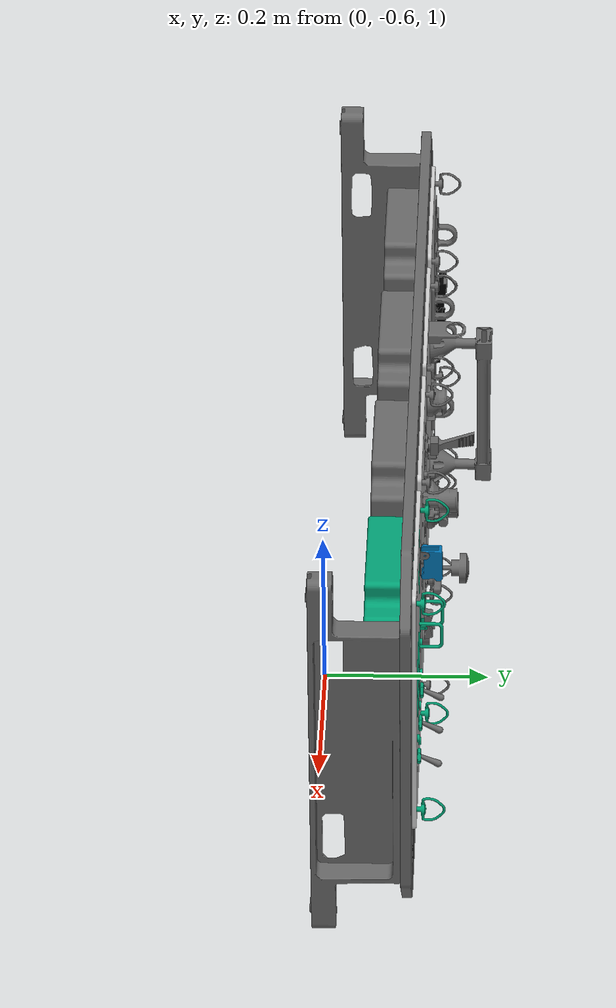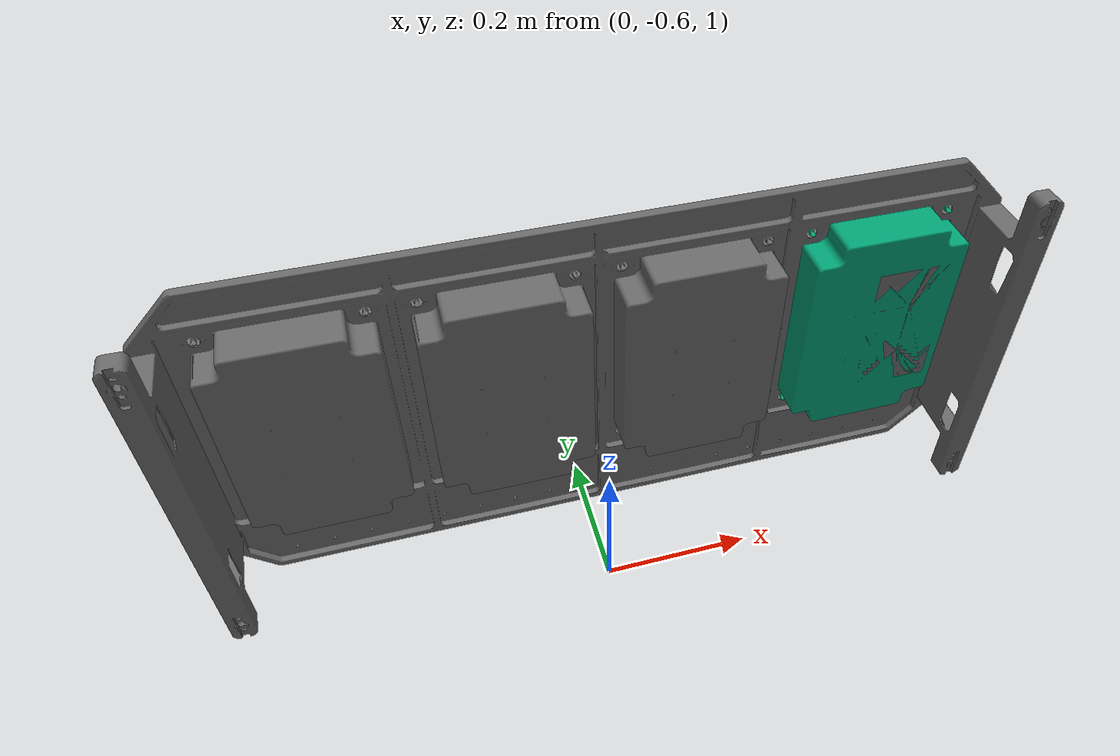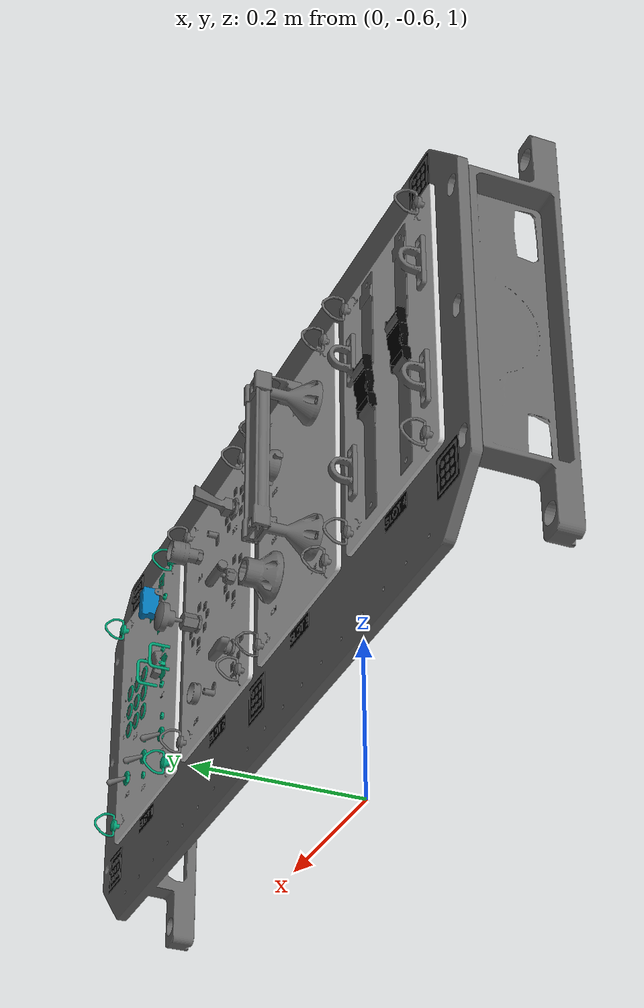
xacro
<?xml version="1.0"?>
<robot xmlns:controller="http://playerstage.sourceforge.net/gazebo/xmlschema/#controller">
  <link name="world"/>
  <link name="dummy">
    <inertial>
      <mass value="1"/>
      <inertia ixx="1" ixy="0.0" ixz="0.0" iyy="1" iyz="0.0" izz="1"/>
    </inertial>
  </link>
  <link name="taskboard_lower">
    <visual>
      <geometry>
        <mesh filename="package://r2_gazebo/Media/models/taskboard/tskbd_lower_assembly_robonaut.dae"/>
      </geometry>
      <origin xyz="0.0 0.0 0.0" rpy="0 0 0"/>
    </visual>
    <collision>
      <geometry>
        <mesh filename="package://r2_gazebo/Media/models/taskboard/tskbd_lower_assembly_robonaut.dae" scale="0 0 0"/>
      </geometry>
      <origin xyz="0.0 0.0 0.0" rpy="0 0 0"/>
    </collision>
    <inertial>
      <mass value="5"/>
      <inertia ixx="1" ixy="0.0" ixz="0.0" iyy="1" iyz="0.0" izz="1"/>
    </inertial>
  </link>

  <link name="taskboard_lower_labels">
    <visual>
      <geometry>
        <mesh filename="package://r2_gazebo/Media/models/taskboard/tskbd_lower_assembly_labels.dae"/>
      </geometry>
      <origin xyz="0.0 0.0 0.0" rpy="0 0 0"/>
    </visual>
    <collision>
      <geometry>
        <mesh filename="package://r2_gazebo/Media/models/taskboard/tskbd_lower_assembly_labels.dae" scale="0 0 0"/>
      </geometry>
      <origin xyz="0.0 0.0 0.0" rpy="0 0 0"/>
    </collision>
    <inertial>
      <mass value="5"/>
      <inertia ixx="1" ixy="0.0" ixz="0.0" iyy="1" iyz="0.0" izz="1"/>
    </inertial>
  </link>

  <link name="taskboard_slot3">
    <visual>
      <geometry>
        <mesh filename="package://r2_gazebo/Media/models/taskboard/tskbd_panel_assembly_eva_slot3.dae"/>
      </geometry>
      <origin xyz="0.0 0.0 0.0" rpy="0 0 0"/>
    </visual>
    <collision>
      <geometry>
        <mesh filename="package://r2_gazebo/Media/models/taskboard/tskbd_panel_assembly_eva_slot3.dae" scale="1 1 1"/>
      </geometry>
      <origin xyz="0.0 0.0 0.0" rpy="0 0 0"/>
    </collision>
    <inertial>
      <mass value="5"/>
      <inertia ixx="1" ixy="0.0" ixz="0.0" iyy="1" iyz="0.0" izz="1"/>
    </inertial>
  </link>

  <link name="taskboard_slot3_panel">
    <visual>
      <geometry>
        <mesh filename="package://r2_gazebo/Media/models/taskboard/tskbd_panel_assembly_slot1_panel.dae"/>
      </geometry>
      <origin xyz="0.0 0.0 0.0" rpy="0 0 0"/>
    </visual>
    <collision>
      <geometry>
        <mesh filename="package://r2_gazebo/Media/models/taskboard/tskbd_panel_assembly_slot1_panel.dae" scale="1 1 1"/>
      </geometry>
      <origin xyz="0.0 0.0 0.0" rpy="0 0 0"/>
    </collision>
    <inertial>
      <mass value="5"/>
      <inertia ixx="1" ixy="0.0" ixz="0.0" iyy="1" iyz="0.0" izz="1"/>
    </inertial>
  </link>

  <link name="taskboard_slot3_labels">
    <visual>
      <geometry>
        <mesh filename="package://r2_gazebo/Media/models/taskboard/tskbd_panel_assembly_eva_slot3_labels.dae"/>
      </geometry>
      <origin xyz="0.0 0.0 0.0" rpy="0 0 0"/>
    </visual>
    <collision>
      <geometry>
        <mesh filename="package://r2_gazebo/Media/models/taskboard/tskbd_panel_assembly_eva_slot3_labels.dae" scale="1 1 1"/>
      </geometry>
      <origin xyz="0.0 0.0 0.0" rpy="0 0 0"/>
    </collision>
    <inertial>
      <mass value="5"/>
      <inertia ixx="1" ixy="0.0" ixz="0.0" iyy="1" iyz="0.0" izz="1"/>
    </inertial>
  </link>

  <link name="taskboard_slot4">
    <visual>
      <geometry>
        <mesh filename="package://r2_gazebo/Media/models/taskboard/tskbd_panel_assembly_slot4.dae"/>
      </geometry>
      <origin xyz="0.0 0.0 0.0" rpy="0 0 0"/>
    </visual>
    <collision>
      <geometry>
        <mesh filename="package://r2_gazebo/Media/models/taskboard/tskbd_panel_assembly_slot4.dae" scale="1 1 1"/>
      </geometry>
      <origin xyz="0.0 0.0 0.0" rpy="0 0 0"/>
    </collision>
    <inertial>
      <mass value="5"/>
      <inertia ixx="1" ixy="0.0" ixz="0.0" iyy="1" iyz="0.0" izz="1"/>
    </inertial>
  </link>

  <link name="taskboard_slot4_panel">
    <visual>
      <geometry>
        <mesh filename="package://r2_gazebo/Media/models/taskboard/tskbd_panel_assembly_slot4_panel.dae"/>
      </geometry>
      <origin xyz="0.0 0.0 0.0" rpy="0 0 0"/>
    </visual>
    <collision>
      <geometry>
        <mesh filename="package://r2_gazebo/Media/models/taskboard/tskbd_panel_assembly_slot4_panel.dae" scale="1 1 1"/>
      </geometry>
      <origin xyz="0.0 0.0 0.0" rpy="0 0 0"/>
    </collision>
    <inertial>
      <mass value="5"/>
      <inertia ixx="1" ixy="0.0" ixz="0.0" iyy="1" iyz="0.0" izz="1"/>
    </inertial>
  </link>

  <link name="taskboard_slot4_labels">
    <visual>
      <geometry>
        <mesh filename="package://r2_gazebo/Media/models/taskboard/tskbd_panel_assembly_slot4_labels.dae"/>
      </geometry>
      <origin xyz="0.0 0.0 0.0" rpy="0 0 0"/>
    </visual>
    <collision>
      <geometry>
        <mesh filename="package://r2_gazebo/Media/models/taskboard/tskbd_panel_assembly_slot4_labels.dae" scale="1 1 1"/>
      </geometry>
      <origin xyz="0.0 0.0 0.0" rpy="0 0 0"/>
    </collision>
    <inertial>
      <mass value="5"/>
      <inertia ixx="1" ixy="0.0" ixz="0.0" iyy="1" iyz="0.0" izz="1"/>
    </inertial>
  </link>

  <link name="taskboard_slot1">
    <visual>
      <geometry>
        <mesh filename="package://r2_gazebo/Media/models/taskboard/tskbd_panel_assembly_slot1.dae"/>
      </geometry>
      <origin xyz="0.0 0.0 0.0" rpy="0 0 0"/>
    </visual>
    <collision>
      <geometry>
        <mesh filename="package://r2_gazebo/Media/models/taskboard/tskbd_panel_assembly_slot1.dae" scale="1 1 1"/>
      </geometry>
      <origin xyz="0.0 0.0 0.0" rpy="0 0 0"/>
    </collision>
    <inertial>
      <mass value="5"/>
      <inertia ixx="1" ixy="0.0" ixz="0.0" iyy="1" iyz="0.0" izz="1"/>
    </inertial>
  </link>

  <link name="taskboard_slot1_panel">
    <visual>
      <geometry>
        <mesh filename="package://r2_gazebo/Media/models/taskboard/tskbd_panel_assembly_slot1_panel.dae"/>
      </geometry>
      <origin xyz="0.0 0.0 0.0" rpy="0 0 0"/>
    </visual>
    <collision>
      <geometry>
        <mesh filename="package://r2_gazebo/Media/models/taskboard/tskbd_panel_assembly_slot1_panel.dae" scale="1 1 1"/>
      </geometry>
      <origin xyz="0.0 0.0 0.0" rpy="0 0 0"/>
    </collision>
    <inertial>
      <mass value="5"/>
      <inertia ixx="1" ixy="0.0" ixz="0.0" iyy="1" iyz="0.0" izz="1"/>
    </inertial>
  </link>

  <link name="taskboard_slot1_labels">
    <visual>
      <geometry>
        <mesh filename="package://r2_gazebo/Media/models/taskboard/tskbd_panel_assembly_slot1_labels.dae"/>
      </geometry>
      <origin xyz="0.0 0.0 0.0" rpy="0 0 0"/>
    </visual>
    <collision>
      <geometry>
        <mesh filename="package://r2_gazebo/Media/models/taskboard/tskbd_panel_assembly_slot1_labels.dae" scale="1 1 1"/>
      </geometry>
      <origin xyz="0.0 0.0 0.0" rpy="0 0 0"/>
    </collision>
    <inertial>
      <mass value="5"/>
      <inertia ixx="1" ixy="0.0" ixz="0.0" iyy="1" iyz="0.0" izz="1"/>
    </inertial>
  </link>

  <link name="taskboard_slot1_switch1">
    <visual>
      <geometry>
        <mesh filename="package://r2_gazebo/Media/models/taskboard/tskbd_panel_assembly_slot1_switch1.dae"/>
      </geometry>
      <origin xyz="0.0 0.0 0.0" rpy="0 0 0"/>
    </visual>
    <collision>
      <geometry>
        <mesh filename="package://r2_gazebo/Media/models/taskboard/tskbd_panel_assembly_slot1_switch1.dae" scale="1 1 1"/>
      </geometry>
      <origin xyz="0.0 0.0 0.0" rpy="0 0 0"/>
    </collision>
    <inertial>
      <mass value="0.5"/>
      <inertia ixx="1" ixy="0.0" ixz="0.0" iyy="1" iyz="0.0" izz="1"/>
    </inertial>
  </link>

  <link name="taskboard_slot1_switch2_pullout">
    <inertial>
      <mass value=".01"/>
      <inertia ixx="1" ixy="0.0" ixz="0.0" iyy="1" iyz="0.0" izz="1"/>
    </inertial>
  </link>

  <link name="taskboard_slot1_switch2">
    <visual>
      <geometry>
        <mesh filename="package://r2_gazebo/Media/models/taskboard/tskbd_panel_assembly_slot1_switch2.dae"/>
      </geometry>
      <origin xyz="0.0 0.0 0.0" rpy="0 0 0"/>
    </visual>
    <collision>
      <geometry>
        <mesh filename="package://r2_gazebo/Media/models/taskboard/tskbd_panel_assembly_slot1_switch2.dae" scale="1 1 1"/>
      </geometry>
      <origin xyz="0.0 0.0 0.0" rpy="0 0 0"/>
    </collision>
    <inertial>
      <mass value="0.5"/>
      <inertia ixx="1" ixy="0.0" ixz="0.0" iyy="1" iyz="0.0" izz="1"/>
    </inertial>
  </link>

  <link name="taskboard_slot1_switch3_pullout">
    <inertial>
      <mass value=".01"/>
      <inertia ixx="1" ixy="0.0" ixz="0.0" iyy="1" iyz="0.0" izz="1"/>
    </inertial>
  </link>

  <link name="taskboard_slot1_switch3">
    <visual>
      <geometry>
        <mesh filename="package://r2_gazebo/Media/models/taskboard/tskbd_panel_assembly_slot1_switch3.dae"/>
      </geometry>
      <origin xyz="0.0 0.0 0.0" rpy="0 0 0"/>
    </visual>
    <collision>
      <geometry>
        <mesh filename="package://r2_gazebo/Media/models/taskboard/tskbd_panel_assembly_slot1_switch3.dae" scale="1 1 1"/>
      </geometry>
      <origin xyz="0.0 0.0 0.0" rpy="0 0 0"/>
    </collision>
    <inertial>
      <mass value="0.5"/>
      <inertia ixx="1" ixy="0.0" ixz="0.0" iyy="1" iyz="0.0" izz="1"/>
    </inertial>
  </link>

  <link name="taskboard_slot1_switch4_pullout">
    <inertial>
      <mass value=".01"/>
      <inertia ixx="1" ixy="0.0" ixz="0.0" iyy="1" iyz="0.0" izz="1"/>
    </inertial>
  </link>

  <link name="taskboard_slot1_switch4">
    <visual>
      <geometry>
        <mesh filename="package://r2_gazebo/Media/models/taskboard/tskbd_panel_assembly_slot1_switch4.dae"/>
      </geometry>
      <origin xyz="0.0 0.0 0.0" rpy="0 0 0"/>
    </visual>
    <collision>
      <geometry>
        <mesh filename="package://r2_gazebo/Media/models/taskboard/tskbd_panel_assembly_slot1_switch4.dae" scale="1 1 1"/>
      </geometry>
      <origin xyz="0.0 0.0 0.0" rpy="0 0 0"/>
    </collision>
    <inertial>
      <mass value="0.5"/>
      <inertia ixx="1" ixy="0.0" ixz="0.0" iyy="1" iyz="0.0" izz="1"/>
    </inertial>
  </link>

  <link name="taskboard_slot1_switch1_cover">
    <visual>
      <geometry>
        <mesh filename="package://r2_gazebo/Media/models/taskboard/tskbd_panel_assembly_slot1_switch1_cover.dae"/>
      </geometry>
      <origin xyz="0.0 0.0 0.0" rpy="0 0 0"/>
    </visual>
    <collision>
      <geometry>
        <mesh filename="package://r2_gazebo/Media/models/taskboard/tskbd_panel_assembly_slot1_switch1_cover.dae" scale="1 1 1"/>
      </geometry>
      <origin xyz="0.0 0.0 0.0" rpy="0 0 0"/>
    </collision>
    <inertial>
      <mass value="0.5"/>
      <inertia ixx="1" ixy="0.0" ixz="0.0" iyy="1" iyz="0.0" izz="1"/>
    </inertial>
  </link>

  <link name="taskboard_slot1_guard">
    <visual>
      <geometry>
        <mesh filename="package://r2_gazebo/Media/models/taskboard/tskbd_panel_assembly_slot1_guard.dae"/>
      </geometry>
      <origin xyz="0.0 0.0 0.0" rpy="0 0 0"/>
    </visual>
    <collision>
      <geometry>
        <mesh filename="package://r2_gazebo/Media/models/taskboard/tskbd_panel_assembly_slot1_guard.dae" scale="1 1 1"/>
      </geometry>
      <origin xyz="0.0 0.0 0.0" rpy="0 0 0"/>
    </collision>
    <inertial>
      <mass value="5"/>
      <inertia ixx="1" ixy="0.0" ixz="0.0" iyy="1" iyz="0.0" izz="1"/>
    </inertial>
  </link>

  <link name="taskboard_slot1_A1">
    <visual>
      <geometry>
        <mesh filename="package://r2_gazebo/Media/models/taskboard/tskbd_panel_assembly_slot1_a1.dae"/>
      </geometry>
      <origin xyz="0.0 0.0 0.0" rpy="0 0 0"/>
    </visual>
    <collision>
      <geometry>
        <mesh filename="package://r2_gazebo/Media/models/taskboard/tskbd_panel_assembly_slot1_a1.dae" scale="1 1 1"/>
      </geometry>
      <origin xyz="0.0 0.0 0.0" rpy="0 0 0"/>
    </collision>
    <inertial>
      <mass value="0.5"/>
      <inertia ixx="1" ixy="0.0" ixz="0.0" iyy="1" iyz="0.0" izz="1"/>
    </inertial>
  </link>

  <link name="taskboard_slot1_A2">
    <visual>
      <geometry>
        <mesh filename="package://r2_gazebo/Media/models/taskboard/tskbd_panel_assembly_slot1_a2.dae"/>
      </geometry>
      <origin xyz="0.0 0.0 0.0" rpy="0 0 0"/>
    </visual>
    <collision>
      <geometry>
        <mesh filename="package://r2_gazebo/Media/models/taskboard/tskbd_panel_assembly_slot1_a2.dae" scale="1 1 1"/>
      </geometry>
      <origin xyz="0.0 0.0 0.0" rpy="0 0 0"/>
    </collision>
    <inertial>
      <mass value="0.5"/>
      <inertia ixx="1" ixy="0.0" ixz="0.0" iyy="1" iyz="0.0" izz="1"/>
    </inertial>
  </link>

  <link name="taskboard_slot1_A3">
    <visual>
      <geometry>
        <mesh filename="package://r2_gazebo/Media/models/taskboard/tskbd_panel_assembly_slot1_a3.dae"/>
      </geometry>
      <origin xyz="0.0 0.0 0.0" rpy="0 0 0"/>
    </visual>
    <collision>
      <geometry>
        <mesh filename="package://r2_gazebo/Media/models/taskboard/tskbd_panel_assembly_slot1_a3.dae" scale="1 1 1"/>
      </geometry>
      <origin xyz="0.0 0.0 0.0" rpy="0 0 0"/>
    </collision>
    <inertial>
      <mass value="0.5"/>
      <inertia ixx="1" ixy="0.0" ixz="0.0" iyy="1" iyz="0.0" izz="1"/>
    </inertial>
  </link>

  <link name="taskboard_slot1_B1">
    <visual>
      <geometry>
        <mesh filename="package://r2_gazebo/Media/models/taskboard/tskbd_panel_assembly_slot1_b1.dae"/>
      </geometry>
      <origin xyz="0.0 0.0 0.0" rpy="0 0 0"/>
    </visual>
    <collision>
      <geometry>
        <mesh filename="package://r2_gazebo/Media/models/taskboard/tskbd_panel_assembly_slot1_b1.dae" scale="1 1 1"/>
      </geometry>
      <origin xyz="0.0 0.0 0.0" rpy="0 0 0"/>
    </collision>
    <inertial>
      <mass value="0.5"/>
      <inertia ixx="1" ixy="0.0" ixz="0.0" iyy="1" iyz="0.0" izz="1"/>
    </inertial>
  </link>

  <link name="taskboard_slot1_B2">
    <visual>
      <geometry>
        <mesh filename="package://r2_gazebo/Media/models/taskboard/tskbd_panel_assembly_slot1_b2.dae"/>
      </geometry>
      <origin xyz="0.0 0.0 0.0" rpy="0 0 0"/>
    </visual>
    <collision>
      <geometry>
        <mesh filename="package://r2_gazebo/Media/models/taskboard/tskbd_panel_assembly_slot1_b2.dae" scale="1 1 1"/>
      </geometry>
      <origin xyz="0.0 0.0 0.0" rpy="0 0 0"/>
    </collision>
    <inertial>
      <mass value="0.5"/>
      <inertia ixx="1" ixy="0.0" ixz="0.0" iyy="1" iyz="0.0" izz="1"/>
    </inertial>
  </link>

  <link name="taskboard_slot1_B3">
    <visual>
      <geometry>
        <mesh filename="package://r2_gazebo/Media/models/taskboard/tskbd_panel_assembly_slot1_b3.dae"/>
      </geometry>
      <origin xyz="0.0 0.0 0.0" rpy="0 0 0"/>
    </visual>
    <collision>
      <geometry>
        <mesh filename="package://r2_gazebo/Media/models/taskboard/tskbd_panel_assembly_slot1_b3.dae" scale="1 1 1"/>
      </geometry>
      <origin xyz="0.0 0.0 0.0" rpy="0 0 0"/>
    </collision>
    <inertial>
      <mass value="0.5"/>
      <inertia ixx="1" ixy="0.0" ixz="0.0" iyy="1" iyz="0.0" izz="1"/>
    </inertial>
  </link>

  <link name="taskboard_slot1_C1">
    <visual>
      <geometry>
        <mesh filename="package://r2_gazebo/Media/models/taskboard/tskbd_panel_assembly_slot1_c1.dae"/>
      </geometry>
      <origin xyz="0.0 0.0 0.0" rpy="0 0 0"/>
    </visual>
    <collision>
      <geometry>
        <mesh filename="package://r2_gazebo/Media/models/taskboard/tskbd_panel_assembly_slot1_c1.dae" scale="1 1 1"/>
      </geometry>
      <origin xyz="0.0 0.0 0.0" rpy="0 0 0"/>
    </collision>
    <inertial>
      <mass value="0.5"/>
      <inertia ixx="1" ixy="0.0" ixz="0.0" iyy="1" iyz="0.0" izz="1"/>
    </inertial>
  </link>

  <link name="taskboard_slot1_C2">
    <visual>
      <geometry>
        <mesh filename="package://r2_gazebo/Media/models/taskboard/tskbd_panel_assembly_slot1_c2.dae"/>
      </geometry>
      <origin xyz="0.0 0.0 0.0" rpy="0 0 0"/>
    </visual>
    <collision>
      <geometry>
        <mesh filename="package://r2_gazebo/Media/models/taskboard/tskbd_panel_assembly_slot1_c2.dae" scale="1 1 1"/>
      </geometry>
      <origin xyz="0.0 0.0 0.0" rpy="0 0 0"/>
    </collision>
    <inertial>
      <mass value="0.5"/>
      <inertia ixx="1" ixy="0.0" ixz="0.0" iyy="1" iyz="0.0" izz="1"/>
    </inertial>
  </link>

  <link name="taskboard_slot1_C3">
    <visual>
      <geometry>
        <mesh filename="package://r2_gazebo/Media/models/taskboard/tskbd_panel_assembly_slot1_c3.dae"/>
      </geometry>
      <origin xyz="0.0 0.0 0.0" rpy="0 0 0"/>
    </visual>
    <collision>
      <geometry>
        <mesh filename="package://r2_gazebo/Media/models/taskboard/tskbd_panel_assembly_slot1_c3.dae" scale="1 1 1"/>
      </geometry>
      <origin xyz="0.0 0.0 0.0" rpy="0 0 0"/>
    </collision>
    <inertial>
      <mass value="0.5"/>
      <inertia ixx="1" ixy="0.0" ixz="0.0" iyy="1" iyz="0.0" izz="1"/>
    </inertial>
  </link>

  <link name="taskboard_slot1_blackplate">
    <visual>
      <geometry>
        <mesh filename="package://r2_gazebo/Media/models/taskboard/tskbd_panel_assembly_slot1_blackplate.dae"/>
      </geometry>
      <origin xyz="0.0 0.0 0.0" rpy="0 0 0"/>
    </visual>
    <collision>
      <geometry>
        <mesh filename="package://r2_gazebo/Media/models/taskboard/tskbd_panel_assembly_slot1_blackplate.dae" scale="1 1 1"/>
      </geometry>
      <origin xyz="0.0 0.0 0.0" rpy="0 0 0"/>
    </collision>
    <inertial>
      <mass value="5"/>
      <inertia ixx="1" ixy="0.0" ixz="0.0" iyy="1" iyz="0.0" izz="1"/>
    </inertial>
  </link>

  <link name="taskboard_slot1_switch">
    <visual>
      <geometry>
        <mesh filename="package://r2_gazebo/Media/models/taskboard/tskbd_panel_assembly_slot1_switch.dae"/>
      </geometry>
      <origin xyz="0.0 0.0 0.0" rpy="0 0 0"/>
    </visual>
    <collision>
      <geometry>
        <mesh filename="package://r2_gazebo/Media/models/taskboard/tskbd_panel_assembly_slot1_switch.dae" scale="1 1 1"/>
      </geometry>
      <origin xyz="0.0 0.0 0.0" rpy="0 0 0"/>
    </collision>
    <inertial>
      <mass value="0.5"/>
      <inertia ixx="1" ixy="0.0" ixz="0.0" iyy="1" iyz="0.0" izz="1"/>
    </inertial>
  </link>

  <link name="taskboard_slot2">
    <visual>
      <geometry>
        <mesh filename="package://r2_gazebo/Media/models/taskboard/tskbd_panel_assembly_slot2.dae"/>
      </geometry>
      <origin xyz="0.0 0.0 0.0" rpy="0 0 0"/>
    </visual>
    <collision>
      <geometry>
        <mesh filename="package://r2_gazebo/Media/models/taskboard/tskbd_panel_assembly_slot2.dae" scale="1 1 1"/>
      </geometry>
      <origin xyz="0.0 0.0 0.0" rpy="0 0 0"/>
    </collision>
    <inertial>
      <mass value="5"/>
      <inertia ixx="1" ixy="0.0" ixz="0.0" iyy="1" iyz="0.0" izz="1"/>
    </inertial>
  </link>

  <link name="taskboard_slot2_panel">
    <visual>
      <geometry>
        <mesh filename="package://r2_gazebo/Media/models/taskboard/tskbd_panel_assembly_slot1_panel.dae"/>
      </geometry>
      <origin xyz="0.0 0.0 0.0" rpy="0 0 0"/>
    </visual>
    <collision>
      <geometry>
        <mesh filename="package://r2_gazebo/Media/models/taskboard/tskbd_panel_assembly_slot1_panel.dae" scale="1 1 1"/>
      </geometry>
      <origin xyz="0.0 0.0 0.0" rpy="0 0 0"/>
    </collision>
    <inertial>
      <mass value="5"/>
      <inertia ixx="1" ixy="0.0" ixz="0.0" iyy="1" iyz="0.0" izz="1"/>
    </inertial>
  </link>

  <link name="taskboard_slot2_labels1">
    <visual>
      <geometry>
        <mesh filename="package://r2_gazebo/Media/models/taskboard/tskbd_panel_assembly_slot2_labels1.dae"/>
      </geometry>
      <origin xyz="0.0 0.0 0.0" rpy="0 0 0"/>
    </visual>
    <collision>
      <geometry>
        <mesh filename="package://r2_gazebo/Media/models/taskboard/tskbd_panel_assembly_slot2_labels1.dae" scale="1 1 1"/>
      </geometry>
      <origin xyz="0.0 0.0 0.0" rpy="0 0 0"/>
    </collision>
    <inertial>
      <mass value="5"/>
      <inertia ixx="1" ixy="0.0" ixz="0.0" iyy="1" iyz="0.0" izz="1"/>
    </inertial>
  </link>

  <link name="taskboard_slot2_labels2">
    <visual>
      <geometry>
        <mesh filename="package://r2_gazebo/Media/models/taskboard/tskbd_panel_assembly_slot2_labels2.dae"/>
      </geometry>
      <origin xyz="0.0 0.0 0.0" rpy="0 0 0"/>
    </visual>
    <collision>
      <geometry>
        <mesh filename="package://r2_gazebo/Media/models/taskboard/tskbd_panel_assembly_slot2_labels2.dae" scale="1 1 1"/>
      </geometry>
      <origin xyz="0.0 0.0 0.0" rpy="0 0 0"/>
    </collision>
    <inertial>
      <mass value="5"/>
      <inertia ixx="1" ixy="0.0" ixz="0.0" iyy="1" iyz="0.0" izz="1"/>
    </inertial>
  </link>

  <link name="taskboard_slot2_B06">
    <visual>
      <geometry>
        <mesh filename="package://r2_gazebo/Media/models/taskboard/tskbd_panel_assembly_slot2_b06.dae"/>
      </geometry>
      <origin xyz="0.0 0.0 0.0" rpy="0 0 0"/>
    </visual>
    <collision>
      <geometry>
        <mesh filename="package://r2_gazebo/Media/models/taskboard/tskbd_panel_assembly_slot2_b06.dae" scale="1 1 1"/>
      </geometry>
      <origin xyz="0.0 0.0 0.0" rpy="0 0 0"/>
    </collision>
    <inertial>
      <mass value="5"/>
      <inertia ixx="1" ixy="0.0" ixz="0.0" iyy="1" iyz="0.0" izz="1"/>
    </inertial>
  </link>

  <link name="taskboard_slot2_B06_Base">
    <visual>
      <geometry>
        <mesh filename="package://r2_gazebo/Media/models/taskboard/tskbd_panel_assembly_slot2_b06_base.dae"/>
      </geometry>
      <origin xyz="0.0 0.0 0.0" rpy="0 0 0"/>
    </visual>
    <collision>
      <geometry>
        <mesh filename="package://r2_gazebo/Media/models/taskboard/tskbd_panel_assembly_slot2_b06_base.dae" scale="1 1 1"/>
      </geometry>
      <origin xyz="0.0 0.0 0.0" rpy="0 0 0"/>
    </collision>
    <inertial>
      <mass value="5"/>
      <inertia ixx="1" ixy="0.0" ixz="0.0" iyy="1" iyz="0.0" izz="1"/>
    </inertial>
  </link>

  <link name="taskboard_slot2_B04">
    <visual>
      <geometry>
        <mesh filename="package://r2_gazebo/Media/models/taskboard/tskbd_panel_assembly_slot2_b04.dae"/>
      </geometry>
      <origin xyz="0.0 0.0 0.0" rpy="0 0 0"/>
    </visual>
    <collision>
      <geometry>
        <mesh filename="package://r2_gazebo/Media/models/taskboard/tskbd_panel_assembly_slot2_b04.dae" scale="1 1 1"/>
      </geometry>
      <origin xyz="0.0 0.0 0.0" rpy="0 0 0"/>
    </collision>
    <inertial>
      <mass value="5"/>
      <inertia ixx="1" ixy="0.0" ixz="0.0" iyy="1" iyz="0.0" izz="1"/>
    </inertial>
  </link>

  <link name="taskboard_slot2_B04_Base">
    <visual>
      <geometry>
        <mesh filename="package://r2_gazebo/Media/models/taskboard/tskbd_panel_assembly_slot2_b04_base.dae"/>
      </geometry>
      <origin xyz="0.0 0.0 0.0" rpy="0 0 0"/>
    </visual>
    <collision>
      <geometry>
        <mesh filename="package://r2_gazebo/Media/models/taskboard/tskbd_panel_assembly_slot2_b04_base.dae" scale="1 1 1"/>
      </geometry>
      <origin xyz="0.0 0.0 0.0" rpy="0 0 0"/>
    </collision>
    <inertial>
      <mass value="5"/>
      <inertia ixx="1" ixy="0.0" ixz="0.0" iyy="1" iyz="0.0" izz="1"/>
    </inertial>
  </link>

  <link name="taskboard_slot2_B04_Cap">
    <visual>
      <geometry>
        <mesh filename="package://r2_gazebo/Media/models/taskboard/tskbd_panel_assembly_slot2_b04_cap.dae"/>
      </geometry>
      <origin xyz="0.0 0.0 0.0" rpy="0 0 0"/>
    </visual>
    <collision>
      <geometry>
        <mesh filename="package://r2_gazebo/Media/models/taskboard/tskbd_panel_assembly_slot2_b04_cap.dae" scale="1 1 1"/>
      </geometry>
      <origin xyz="0.0 0.0 0.0" rpy="0 0 0"/>
    </collision>
    <inertial>
      <mass value="5"/>
      <inertia ixx="1" ixy="0.0" ixz="0.0" iyy="1" iyz="0.0" izz="1"/>
    </inertial>
  </link>

  <link name="taskboard_slot2_B02">
    <visual>
      <geometry>
        <mesh filename="package://r2_gazebo/Media/models/taskboard/tskbd_panel_assembly_slot2_b02.dae"/>
      </geometry>
      <origin xyz="0.0 0.0 0.0" rpy="0 0 0"/>
    </visual>
    <collision>
      <geometry>
        <mesh filename="package://r2_gazebo/Media/models/taskboard/tskbd_panel_assembly_slot2_b02.dae" scale="1 1 1"/>
      </geometry>
      <origin xyz="0.0 0.0 0.0" rpy="0 0 0"/>
    </collision>
    <inertial>
      <mass value="5"/>
      <inertia ixx="1" ixy="0.0" ixz="0.0" iyy="1" iyz="0.0" izz="1"/>
    </inertial>
  </link>

  <link name="taskboard_slot2_B02_Revolute">
    <inertial>
      <mass value="1"/>
      <inertia ixx="1" ixy="0.0" ixz="0.0" iyy="1" iyz="0.0" izz="1"/>
    </inertial>
  </link>

  <link name="taskboard_slot2_B02_Base">
    <visual>
      <geometry>
        <mesh filename="package://r2_gazebo/Media/models/taskboard/tskbd_panel_assembly_slot2_b02_base.dae"/>
      </geometry>
      <origin xyz="0.0 0.0 0.0" rpy="0 0 0"/>
    </visual>
    <collision>
      <geometry>
        <mesh filename="package://r2_gazebo/Media/models/taskboard/tskbd_panel_assembly_slot2_b02_base.dae" scale="0 0 0"/>
      </geometry>
      <origin xyz="0.0 0.0 0.0" rpy="0 0 0"/>
    </collision>
    <inertial>
      <mass value="5"/>
      <inertia ixx="1" ixy="0.0" ixz="0.0" iyy="1" iyz="0.0" izz="1"/>
    </inertial>
  </link>

  <link name="taskboard_slot2_B01_Base">
    <visual>
      <geometry>
        <mesh filename="package://r2_gazebo/Media/models/taskboard/tskbd_panel_assembly_slot2_b01_base.dae"/>
      </geometry>
      <origin xyz="0.0 0.0 0.0" rpy="0 0 0"/>
    </visual>
    <collision>
      <geometry>
        <mesh filename="package://r2_gazebo/Media/models/taskboard/tskbd_panel_assembly_slot2_b01_base.dae" scale="1 1 1"/>
      </geometry>
      <origin xyz="0.0 0.0 0.0" rpy="0 0 0"/>
    </collision>
    <inertial>
      <mass value="5"/>
      <inertia ixx="1" ixy="0.0" ixz="0.0" iyy="1" iyz="0.0" izz="1"/>
    </inertial>
  </link>

  <link name="taskboard_slot2_B05_Base">
    <visual>
      <geometry>
        <mesh filename="package://r2_gazebo/Media/models/taskboard/tskbd_panel_assembly_slot2_b05_base.dae"/>
      </geometry>
      <origin xyz="0.0 0.0 0.0" rpy="0 0 0"/>
    </visual>
    <collision>
      <geometry>
        <mesh filename="package://r2_gazebo/Media/models/taskboard/tskbd_panel_assembly_slot2_b05_base.dae" scale="1 1 1"/>
      </geometry>
      <origin xyz="0.0 0.0 0.0" rpy="0 0 0"/>
    </collision>
    <inertial>
      <mass value="5"/>
      <inertia ixx="1" ixy="0.0" ixz="0.0" iyy="1" iyz="0.0" izz="1"/>
    </inertial>
  </link>

  <link name="taskboard_slot2_B03">
    <visual>
      <geometry>
        <mesh filename="package://r2_gazebo/Media/models/taskboard/tskbd_panel_assembly_slot2_b03.dae"/>
      </geometry>
      <origin xyz="0.0 0.0 0.0" rpy="0 0 0"/>
    </visual>
    <collision>
      <geometry>
        <mesh filename="package://r2_gazebo/Media/models/taskboard/tskbd_panel_assembly_slot2_b03.dae" scale="1 1 1"/>
      </geometry>
      <origin xyz="0.0 0.0 0.0" rpy="0 0 0"/>
    </collision>
    <inertial>
      <mass value=".1"/>
      <inertia ixx="1" ixy="0.0" ixz="0.0" iyy="1" iyz="0.0" izz="1"/>
    </inertial>
  </link>

  <link name="taskboard_slot2_B03_Base">
    <visual>
      <geometry>
        <mesh filename="package://r2_gazebo/Media/models/taskboard/tskbd_panel_assembly_slot2_b03_base.dae"/>
      </geometry>
      <origin xyz="0.0 0.0 0.0" rpy="0 0 0"/>
    </visual>
    <collision>
      <geometry>
        <mesh filename="package://r2_gazebo/Media/models/taskboard/tskbd_panel_assembly_slot2_b03_base.dae" scale="0 0 0"/>
      </geometry>
      <origin xyz="0.0 0.0 0.0" rpy="0 0 0"/>
    </collision>
    <inertial>
      <mass value="5"/>
      <inertia ixx="1" ixy="0.0" ixz="0.0" iyy="1" iyz="0.0" izz="1"/>
    </inertial>
  </link>

  <link name="taskboard_slot2_B03_Prismatic">
    <inertial>
      <mass value=".01"/>
      <inertia ixx="1" ixy="0.0" ixz="0.0" iyy="1" iyz="0.0" izz="1"/>
    </inertial>
  </link>

  <link name="taskboard_slot2_B03_Strip">
    <visual>
      <geometry>
        <mesh filename="package://r2_gazebo/Media/models/taskboard/tskbd_panel_assembly_slot2_b03_strip.dae"/>
      </geometry>
      <origin xyz="0.0 0.0 0.0" rpy="0 0 0"/>
    </visual>
    <collision>
      <geometry>
        <mesh filename="package://r2_gazebo/Media/models/taskboard/tskbd_panel_assembly_slot2_b03_strip.dae" scale="0 0 0"/>
      </geometry>
      <origin xyz="0.0 0.0 0.0" rpy="0 0 0"/>
    </collision>
    <inertial>
      <mass value=".0001"/>
      <inertia ixx="1" ixy="0.0" ixz="0.0" iyy="1" iyz="0.0" izz="1"/>
    </inertial>
  </link>

  <joint name="world/dummy" type="fixed">
    <parent link="world"/>
    <child link="dummy"/>
    <origin rpy="0.0 0 0" xyz="0.0 0.0 0.0"/>
  </joint>

  <joint name="dummy/taskboard_lower" type="fixed">
    <parent link="dummy"/>
    <child link="taskboard_lower"/>
    <origin rpy="1.57 0 3.14" xyz=".02 -.48 1.3"/>
  </joint>

  <joint name="dummy/taskboard_lower_labels" type="fixed">
    <parent link="taskboard_lower"/>
    <child link="taskboard_lower_labels"/>
    <origin rpy="0 0 0" xyz="0.0 0.0 0"/>
  </joint>

  <joint name="taskboard_lower/taskboard_slot3" type="fixed">
    <parent link="taskboard_lower"/>
    <child link="taskboard_slot3"/>
    <origin rpy="0 0 0" xyz=".121 0.0 0"/>
  </joint>

  <joint name="taskboard_lower/taskboard_slot3_panel" type="fixed">
    <parent link="taskboard_lower"/>
    <child link="taskboard_slot3_panel"/>
    <origin rpy="0 0 0" xyz=".121 0.0 0"/>
  </joint>

  <joint name="taskboard_lower/taskboard_slot3_labels" type="fixed">
    <parent link="taskboard_lower"/>
    <child link="taskboard_slot3_labels"/>
    <origin rpy="0 0 0" xyz=".121 0.0 0"/>
  </joint>

  <joint name="taskboard_lower/taskboard_slot4" type="fixed">
    <parent link="taskboard_lower"/>
    <child link="taskboard_slot4"/>
    <origin rpy="0 0 0" xyz=".362 0.0 0"/>
  </joint>

  <joint name="taskboard_lower/taskboard_slot4_panel" type="fixed">
    <parent link="taskboard_lower"/>
    <child link="taskboard_slot4_panel"/>
    <origin rpy="0 0 0" xyz=".362 0.0 0"/>
  </joint>

  <joint name="taskboard_lower/taskboard_slot4_labels" type="fixed">
    <parent link="taskboard_lower"/>
    <child link="taskboard_slot4_labels"/>
    <origin rpy="0 0 0" xyz=".362 0.0 0"/>
  </joint>

  <joint name="taskboard_lower/taskboard_slot1" type="fixed">
    <parent link="taskboard_lower"/>
    <child link="taskboard_slot1"/>
    <origin rpy="0 0 0" xyz="-.362 0.0 0"/>
  </joint>

  <joint name="taskboard_lower/taskboard_slot1_panel" type="fixed">
    <parent link="taskboard_lower"/>
    <child link="taskboard_slot1_panel"/>
    <origin rpy="0 0 0" xyz="-.362 0.0 0"/>
  </joint>

  <joint name="taskboard_lower/taskboard_slot1_labels" type="fixed">
    <parent link="taskboard_lower"/>
    <child link="taskboard_slot1_labels"/>
    <origin rpy="0 0 0" xyz="-.362 0.0 0"/>
  </joint>

  <joint name="taskboard_lower/taskboard_slot1_switch1" type="revolute">
    <parent link="taskboard_slot1"/>
    <child link="taskboard_slot1_switch1"/>
    <origin rpy="0.419 0 0" xyz=".037 .111 0.005"/>
    <axis xyz="1 0 0"/>
    <limit effort="10000000.0" lower="-0.84" upper="0" velocity="10"/>
  </joint>

  <joint name="taskboard_lower/taskboard_slot1_switch2" type="revolute">
    <parent link="taskboard_slot1"/>
    <child link="taskboard_slot1_switch2_pullout"/>
    <origin rpy=".47 0 0" xyz="-.0635 -.089 0.009"/>
    <axis xyz="1 0 0"/>
    <limit effort="10000000.0" lower="-.94" upper="0" velocity="10"/>
  </joint>

  <joint name="taskboard_lower/taskboard_slot1_switch2_pullout" type="prismatic">
    <parent link="taskboard_slot1_switch2_pullout"/>
    <child link="taskboard_slot1_switch2"/>
    <origin rpy="0 0 0" xyz="0 0 0"/>
    <axis xyz="0 0 1" />
    <limit lower="-.002" upper="0.00" effort="100" velocity="100" />
  </joint>

  <joint name="taskboard_lower/taskboard_slot1_switch3" type="revolute">
    <parent link="taskboard_slot1"/>
    <child link="taskboard_slot1_switch3_pullout"/>
    <origin rpy=".47 0 0" xyz=".0005 -.089 0.009"/>
    <axis xyz="1 0 0"/>
    <limit effort="10000000.0" lower="-.94" upper="0" velocity="10"/>
  </joint>

  <joint name="taskboard_lower/taskboard_slot1_switch3_pullout" type="prismatic">
    <parent link="taskboard_slot1_switch3_pullout"/>
    <child link="taskboard_slot1_switch3"/>
    <origin rpy="0 0 0" xyz="0 0 0"/>
    <axis xyz="0 0 1" />
    <limit lower="-.002" upper="0" effort="100" velocity="100" />
  </joint>

  <joint name="taskboard_lower/taskboard_slot1_switch4" type="revolute">
    <parent link="taskboard_slot1"/>
    <child link="taskboard_slot1_switch4_pullout"/>
    <origin rpy=".47 0 0" xyz=".0635 -.089 0.009"/>
    <axis xyz="1 0 0"/>
    <limit effort="10000000.0" lower="-.94" upper="0" velocity="10"/>
  </joint>

  <joint name="taskboard_lower/taskboard_slot1_switch4_pullout" type="prismatic">
    <parent link="taskboard_slot1_switch4_pullout"/>
    <child link="taskboard_slot1_switch4"/>
    <origin rpy="0 0 0" xyz="0 0 0"/>
    <axis xyz="0 0 1" />
    <limit lower="-.002" upper="0" effort="100" velocity="100" />
  </joint>

  <joint name="taskboard_lower/taskboard_slot1_switch1_cover" type="revolute">
    <parent link="taskboard_slot1"/>
    <child link="taskboard_slot1_switch1_cover"/>
    <origin rpy="0 0 0" xyz="0.037 0.124 0.011"/>
    <axis xyz="1 0 0"/>
    <limit effort="10000000.0" lower="-1.57" upper="0" velocity="10"/>
  </joint>

  <joint name="taskboard_lower/taskboard_slot1_guard" type="fixed">
    <parent link="taskboard_slot1"/>
    <child link="taskboard_slot1_guard"/>
    <origin rpy="0 0 0" xyz="0.037 0.124 0.011"/>
  </joint>

  <joint name="taskboard_lower/taskboard_slot1_A1" type="prismatic">
    <parent link="taskboard_slot1"/>
    <child link="taskboard_slot1_A1"/>
    <origin rpy="0 0 0" xyz="0 0 0"/>
    <axis xyz="0 0 1" />
    <limit lower="-0.0005" upper="0.001" effort="100" velocity="100" />
  </joint>

  <joint name="taskboard_lower/taskboard_slot1_A2" type="prismatic">
    <parent link="taskboard_slot1"/>
    <child link="taskboard_slot1_A2"/>
    <origin rpy="0 0 0" xyz="0 0 0"/>
    <axis xyz="0 0 1" />
    <limit lower="-.0005" upper="0.001" effort="100" velocity="100" />
  </joint>

  <joint name="taskboard_lower/taskboard_slot1_A3" type="prismatic">
    <parent link="taskboard_slot1"/>
    <child link="taskboard_slot1_A3"/>
    <origin rpy="0 0 0" xyz="0 0 0"/>
    <axis xyz="0 0 1" />
    <limit lower="-.0005" upper="0.001" effort="100" velocity="100" />
  </joint>

  <joint name="taskboard_lower/taskboard_slot1_B1" type="prismatic">
    <parent link="taskboard_slot1"/>
    <child link="taskboard_slot1_B1"/>
    <origin rpy="0 0 0" xyz="0 0 0"/>
    <axis xyz="0 0 1" />
    <limit lower="-.0005" upper="0.001" effort="100" velocity="100" />
  </joint>

  <joint name="taskboard_lower/taskboard_slot1_B2" type="prismatic">
    <parent link="taskboard_slot1"/>
    <child link="taskboard_slot1_B2"/>
    <origin rpy="0 0 0" xyz="0 0 0"/>
    <axis xyz="0 0 1" />
    <limit lower="-.0005" upper="0.001" effort="100" velocity="100" />
  </joint>

  <joint name="taskboard_lower/taskboard_slot1_B3" type="prismatic">
    <parent link="taskboard_slot1"/>
    <child link="taskboard_slot1_B3"/>
    <origin rpy="0 0 0" xyz="0 0 0"/>
    <axis xyz="0 0 1" />
    <limit lower="-.0005" upper="0.001" effort="100" velocity="100" />
  </joint>

  <joint name="taskboard_lower/taskboard_slot1_C1" type="prismatic">
    <parent link="taskboard_slot1"/>
    <child link="taskboard_slot1_C1"/>
    <origin rpy="0 0 0" xyz="0 0 0"/>
    <axis xyz="0 0 1" />
    <limit lower="-.0005" upper="0.001" effort="100" velocity="100" />
  </joint>

  <joint name="taskboard_lower/taskboard_slot1_C2" type="prismatic">
    <parent link="taskboard_slot1"/>
    <child link="taskboard_slot1_C2"/>
    <origin rpy="0 0 0" xyz="0 0 0"/>
    <axis xyz="0 0 1" />
    <limit lower="-.0005" upper="0.001" effort="100" velocity="100" />
  </joint>

  <joint name="taskboard_lower/taskboard_slot1_C3" type="prismatic">
    <parent link="taskboard_slot1"/>
    <child link="taskboard_slot1_C3"/>
    <origin rpy="0 0 0" xyz="0 0 0"/>
    <axis xyz="0 0 1" />
    <limit lower="-.0005" upper="0.001" effort="100" velocity="100" />
  </joint>

  <joint name="taskboard_lower/taskboard_slot1_blackplate" type="fixed">
    <parent link="taskboard_slot1"/>
    <child link="taskboard_slot1_blackplate"/>
    <origin rpy="0 0 0" xyz="0 0 0"/>
  </joint>

  <joint name="taskboard_lower/taskboard_slot1_switch" type="revolute">
    <parent link="taskboard_slot1"/>
    <child link="taskboard_slot1_switch"/>
    <origin rpy="0 0 0" xyz=".05 .01 .011"/>
    <axis xyz="1 0 0"/>
    <limit lower="-.5" upper=".5" effort="100" velocity="100" />
  </joint>

  <joint name="taskboard_lower/taskboard_slot2" type="fixed">
    <parent link="taskboard_lower"/>
    <child link="taskboard_slot2"/>
    <origin rpy="0 0 0" xyz="-0.121 0 0"/>
  </joint>

  <joint name="taskboard_lower/taskboard_slot2_panel" type="fixed">
    <parent link="taskboard_lower"/>
    <child link="taskboard_slot2_panel"/>
    <origin rpy="0 0 0" xyz="-0.121 0 0"/>
  </joint>

  <joint name="taskboard_lower/taskboard_slot2_labels1" type="fixed">
    <parent link="taskboard_lower"/>
    <child link="taskboard_slot2_labels1"/>
    <origin rpy="0 0 0" xyz="-0.121 0 0.005"/>
  </joint>

  <joint name="taskboard_lower/taskboard_slot2_labels2" type="fixed">
    <parent link="taskboard_lower"/>
    <child link="taskboard_slot2_labels2"/>
    <origin rpy="0 0 0" xyz="-0.121 .002 0.000"/>
  </joint>

  <joint name="taskboard_lower/taskboard_slot2_B06" type="revolute">
    <parent link="taskboard_slot2"/>
    <child link="taskboard_slot2_B06"/>
    <origin rpy="0 0 0" xyz=".057 -0.095 0.0145"/>
    <axis xyz="0 0 1"/>
    <limit lower="-1.57" upper="0" effort="100" velocity="100" />
  </joint>

  <joint name="taskboard_lower/taskboard_slot2_B06_Base" type="fixed">
    <parent link="taskboard_slot2"/>
    <child link="taskboard_slot2_B06_Base"/>
    <origin rpy="0 0 0" xyz=".057 -0.095 0.0"/>
  </joint>

  <joint name="taskboard_lower/taskboard_slot2_B04" type="revolute">
    <parent link="taskboard_slot2"/>
    <child link="taskboard_slot2_B04"/>
    <origin rpy="0 0 0" xyz="0.057 0 0.0198"/>
    <axis xyz="0 0 1"/>
    <limit lower="-3.14" upper="3.14" effort="100" velocity="100" />
  </joint>

  <joint name="taskboard_lower/taskboard_slot2_B04_Base" type="fixed">
    <parent link="taskboard_slot2"/>
    <child link="taskboard_slot2_B04_Base"/>
    <origin rpy="0 0 0" xyz=".057 0 0.0"/>
  </joint>

  <joint name="taskboard_lower/taskboard_slot2_B04_Cap" type="fixed">
    <parent link="taskboard_slot2"/>
    <child link="taskboard_slot2_B04_Cap"/>
    <origin rpy="0 0 0" xyz=".057 0 0.0198"/>
  </joint>

  <joint name="taskboard_lower/taskboard_slot2_B02_Base" type="fixed">
    <parent link="taskboard_slot2"/>
    <child link="taskboard_slot2_B02_Base"/>
    <origin rpy="0 0 0" xyz=".057 0.095 0"/>
  </joint>

  <joint name="taskboard_lower/taskboard_slot2_B02_Revolute" type="revolute">
    <parent link="taskboard_slot2"/>
    <child link="taskboard_slot2_B02_Revolute"/>
    <origin rpy="0 0 0" xyz=".057 0.095 0.011"/>
    <axis xyz="0 0 1"/>
    <limit lower="-3.14" upper="3.14" effort="100" velocity="100" />
  </joint>

  <joint name="taskboard_lower/taskboard_slot2_B02" type="revolute">
    <parent link="taskboard_slot2_B02_Revolute"/>
    <child link="taskboard_slot2_B02"/>
    <origin rpy="0 0 0" xyz="0 0 0"/>
    <axis xyz="0 1 0"/>
    <limit lower="0" upper="1.57" effort="100" velocity="100" />
  </joint>

  <joint name="taskboard_lower/taskboard_slot2_B01_Base" type="fixed">
    <parent link="taskboard_slot2"/>
    <child link="taskboard_slot2_B01_Base"/>
    <origin rpy="0 0 0" xyz="-.057 0.095 0"/>
  </joint>

  <joint name="taskboard_lower/taskboard_slot2_B05_Base" type="fixed">
    <parent link="taskboard_slot2"/>
    <child link="taskboard_slot2_B05_Base"/>
    <origin rpy="0 0 0" xyz="-.057 -0.0953 .0008"/>
  </joint>

  <joint name="taskboard_lower/taskboard_slot2_B03_Base" type="fixed">
    <parent link="taskboard_slot2"/>
    <child link="taskboard_slot2_B03_Base"/>
    <origin rpy="0 0 0" xyz="-0.0571 0 0"/>
  </joint>

  <joint name="taskboard_slot2_B03_Base/taskboard_slot2_B03_Prismatic" type="prismatic">
    <parent link="taskboard_slot2_B03_Base"/>
    <child link="taskboard_slot2_B03_Prismatic"/>
    <origin rpy="0 0 0" xyz="0 0 0.0267"/>
    <axis xyz="0 0 1"/>
    <limit lower="-.02" upper="0" effort="100" velocity="100"/>
  </joint>

  <joint name="taskboard_slot2_B03_Prismatic/taskboard_slot2_B03" type="revolute">
    <parent link="taskboard_slot2_B03_Prismatic"/>
    <child link="taskboard_slot2_B03"/>
    <origin rpy="0 0 0" xyz="0 0 0"/>
    <axis xyz="0 0 1"/>
    <limit lower="-3.14" upper="3.14" effort="100" velocity="100"/>
  </joint>

  <joint name="taskboard_slot2_B03/taskboard_slot2_B03_Strip" type="fixed">
    <parent link="taskboard_slot2_B03"/>
    <child link="taskboard_slot2_B03_Strip"/>
    <origin rpy="0 0 0" xyz="0 0 0"/>
  </joint>

  <gazebo reference="taskboard_lower">
    <material value="Gazebo/Black" />
  </gazebo>

  <gazebo reference="taskboard_slot3_labels">
    <material value="Gazebo/Black" />
  </gazebo>
  <gazebo reference="taskboard_slot4_labels">
    <material value="Gazebo/Black" />
  </gazebo>

  <gazebo reference="taskboard_slot1">
    <material value="Gazebo/Grey" />
  </gazebo>

  <gazebo reference="taskboard_slot1_labels">
    <material value="Gazebo/Black" />
  </gazebo>

  <gazebo reference="taskboard_slot1_switch1_cover">
    <material value="Gazebo/Red" />
  </gazebo>

  <gazebo reference="taskboard_slot1_guard">
    <material value="Gazebo/Black" />
  </gazebo>

  <gazebo reference="taskboard_slot1_blackplate">
    <material value="Gazebo/Black" />
  </gazebo>

  <gazebo reference="taskboard_slot1_switch">
    <material value="Gazebo/Black" />
  </gazebo>

  <gazebo reference="taskboard_slot2_labels1">
    <material value="Gazebo/Black" />
  </gazebo>

  <gazebo reference="taskboard_slot2_labels2">
    <material value="Gazebo/Black" />
  </gazebo>
  <gazebo reference="taskboard_slot2_B04_Cap">
    <material value="Gazebo/Black" />
  </gazebo>
  <gazebo reference="taskboard_slot2_B02">
    <material value="Gazebo/Black" />
  </gazebo>
  <gazebo reference="taskboard_slot2_B03">
    <material value="Gazebo/Black" />
  </gazebo>

  <gazebo reference="taskboard_slot2_B03_Strip">
    <material value="Gazebo/White" />
  </gazebo>

  <gazebo>
    <controller:gazebo_taskboard name="gazebo_taskboard" plugin="libgazebo_taskboard.so">
    </controller:gazebo_taskboard>
  </gazebo>

</robot>
